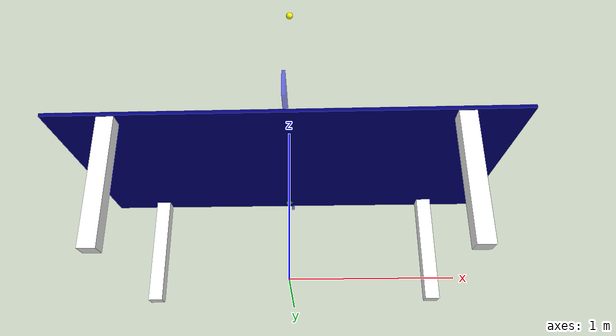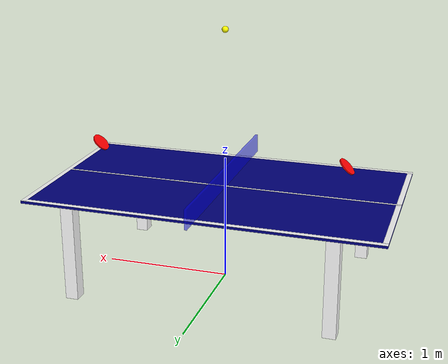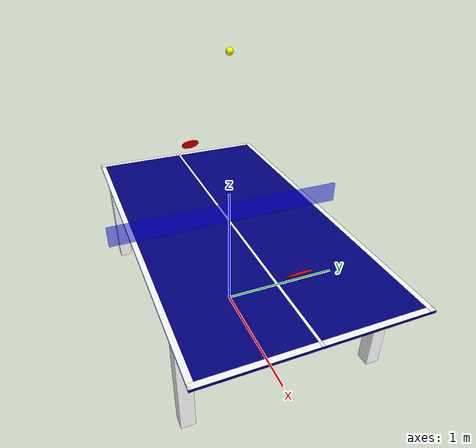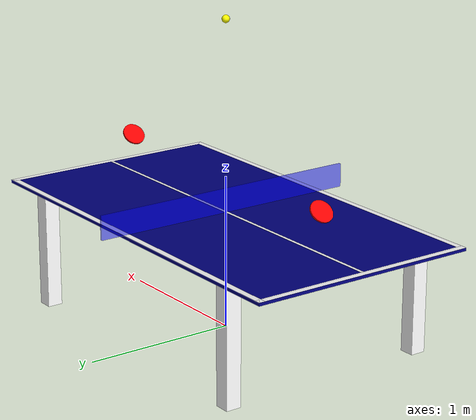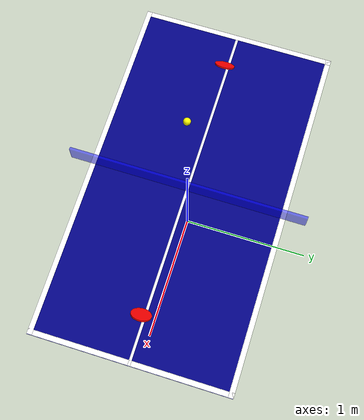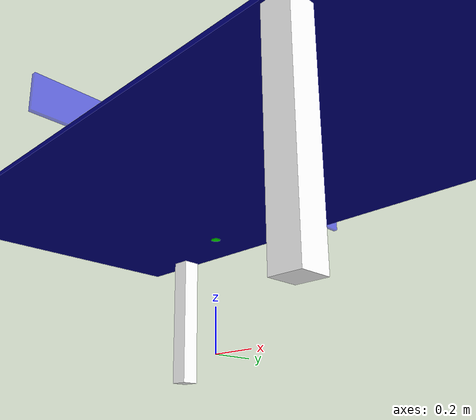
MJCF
<mujoco model="table_tennis(v0.1)">
    <compiler angle="radian" coordinate="local" />
    <option gravity="0 0 -9.81" timestep="0.002">
        <flag warmstart="enable" />
    </option>
    <custom>
        <numeric data="0 0 0 0 0 0 0" name="START_ANGLES" />
    </custom>
    <default>
        <default class="viz">
            <geom type="mesh" contype="0" conaffinity="0" group="1" rgba="1 1 1 1"/>
        </default>
        <default class="contact_geom">
            <geom condim="4" friction="0.1 0.1 0.1" margin="0" solimp="1 1 0" solref="0.1 0.03"/>
        </default>
    </default>
    <asset>
        <texture builtin="checker" height="512" name="texplane" rgb1=".2 .3 .4" rgb2=".1 0.15 0.2" type="2d"
                 width="512"/>
        <material name="floor_plane" reflectance="0.5" texrepeat="1 1" texture="texplane" texuniform="true"/>
    </asset>
    <worldbody>
        <light cutoff="60" diffuse="1 1 1" dir="-.1 -.2 -1.3" directional="true" exponent="1" pos=".1 .2 1.3" specular=".1 .1 .1" />
        <include file="include_table.xml" />
        <include file="include_target_ball.xml" />
        <include file="bats.xml" />
    </worldbody>
</mujoco>

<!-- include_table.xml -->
<mujocoinclude>
    <body name="table_tennis_table" pos="0 0 0">
        <geom class="viz" name="table_base_1" pos="1 0.7 0.375" rgba="1 1 1 1" size="0.05 0.05 .375" type="box" />
        <geom class="viz" name="table_base_2" pos="1 -0.7 0.375" rgba="1 1 1 1" size="0.05 0.05 .375" type="box" />
        <geom class="viz" name="table_base_3" pos="-1 -0.7 0.375" rgba="1 1 1 1" size="0.05 0.05 .375" type="box" />
        <geom class="viz" name="table_base_4" pos="-1 0.7 0.375" rgba="1 1 1 1" size="0.05 0.05 .375" type="box" />
        <body name="table_top" pos="0 0 0.76">
            <geom class="contact_geom" name="table_tennis_table" pos="0 0 0" rgba="0 0 0.5 1" size="1.37 .7625 .01" type="box" />
            <site name="left_up_corner" pos="-1.37 .7625 0.01" rgba="1 1 1 1" size="0.00001" />
            <site name="middle_up_corner" pos="0 .7625 0.01" rgba="1 1 1 1" size="0.00001" />
            <site name="left_down_corner" pos="-1.37 -0.7625 0.01" rgba="1 1 1 1" size="0.00001" />
            <site name="middle_down_corner" pos="0 -.7625 0.01" rgba="1 1 1 1" size="0.00001" />
            <geom class="contact_geom" material="floor_plane" name="table_te_context_spacennis_net" pos="0 0 0.08625" rgba="0 0 1 0.5" size="0.01 0.915 0.07625" type="box" />
            <geom class="viz" name="left_while_line" pos="0 -0.7425 0.01" rgba="1 1 1 1" size="1.37 .02 .001" type="box" />
            <geom class="viz" name="center_while_line" pos="0 0 0.01" rgba="1 1 1 1" size="1.37 .01 .001" type="box" />
            <geom class="viz" name="right_while_line" pos="0 0.7425 0.01" rgba="1 1 1 1" size="1.37 .02 .001" type="box" />
            <geom class="viz" name="right_side_line" pos="1.35 0 0.01" rgba="1 1 1 1" size="0.02 .7625 .001" type="box" />
            <geom class="viz" name="left_side_line" pos="-1.35 0 0.01" rgba="1 1 1 1" size="0.02 .7625 .001" type="box" />
        </body>
        <body name="achieved_pos" pos="0 0 0.5">
            <geom class="viz" name="achieved_point_geom" pos="0 0 0" rgba="0 1 0 1" size="0.02 0.001" type="cylinder" />
        </body>
        <body name="right_achieved_pos" pos="0 0 0.5">
            <geom class="viz" name="hitting_achieved_point_geom" pos="0 0 0" rgba="1 0 0 1" size="0.02 0.001" type="cylinder" />
        </body>
        <body name="target_point" pos="0 0 0.5">
            <geom class="viz" name="target_point_geom" pos="0 0 0" rgba="1 1 0 1" size="0.02 0.001" type="cylinder" />
        </body>
    </body>
</mujocoinclude>

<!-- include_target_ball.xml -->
<mujocoinclude>
    <body name="target_ball" pos="0. 0. 2">
        <joint axis="1 0 0" damping="0.0" name="tar_x" pos="0 0 0" stiffness="0" type="slide" frictionloss="0"/>
        <joint axis="0 1 0" damping="0.0" name="tar_y" pos="0 0 0" stiffness="0" type="slide" frictionloss="0"/>
        <joint axis="0 0 1" damping="0.0" name="tar_z" pos="0 0 0" stiffness="0" type="slide" frictionloss="0"/>
        <geom size="0.025 0.025 0.025" type="sphere" condim="4" name="target_ball_contact" rgba="1 1 0 1" mass="0.1"
              friction="0.1 0.1 0.1" solimp="0.9 0.95 0.001 0.5 2" solref="0.1 0.03" priority="1"/>
        <site name="target_ball" pos="0 0 0" size="0.02 0.02 0.02" rgba="1 0 0 1" type="sphere"/>
    </body>
</mujocoinclude>

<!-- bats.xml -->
<mujocoinclude>
    <body name="bat1" pos="1 0 1" childclass="contact_geom">
         <freejoint/>
        <geom name="bat1" type="cylinder" size="0.075 0.005" rgba="1 0 0 1" pos="0.05 0 0.03" quat="0.3826834 0 0.9238795 0"/>
    </body>
    <body name="bat2" pos="-1 0 1" childclass="contact_geom">
        <geom name="bat2" type="cylinder" size="0.075 0.005" rgba="1 0 0 1" pos="0.05 0 0.03" quat="0.3826834 0 0.9238795 0"/>
    </body>
</mujocoinclude>
